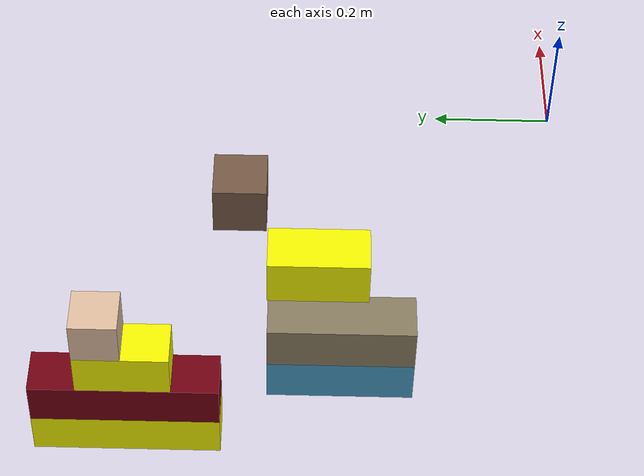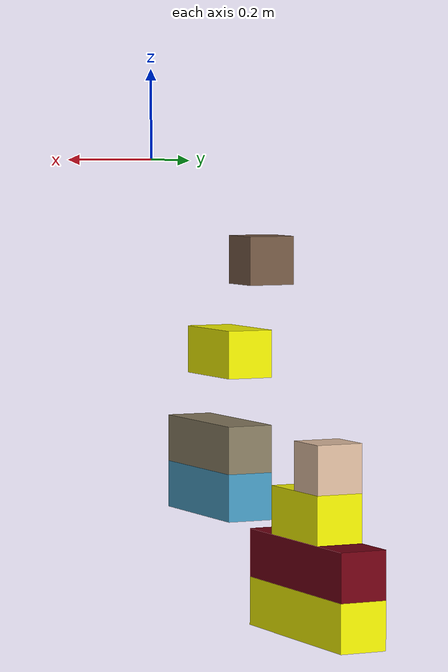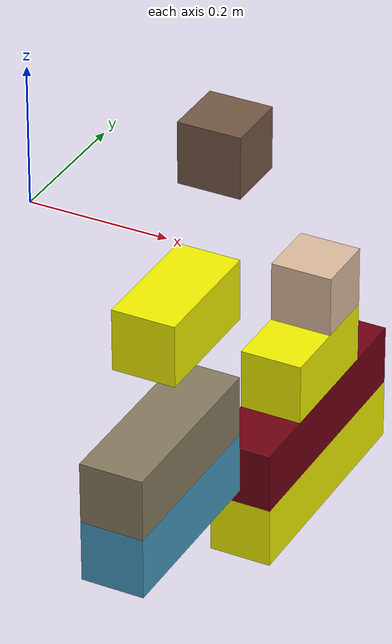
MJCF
<mujoco>
  <worldbody>
    <light pos=' 0 0 1'/>
    <geom type="box" pos="0 0.55 -0.2" size=".05 0.05 .05" rgba="0.4588235294117647 0.34901960784313724 0.27058823529411763 1.0"/>
    <geom type="box" pos="0 0.4 -0.4" size=".05 0.1 .05" rgba="0.9607843137254902 0.9607843137254902 0.0 1.0"/>
    <geom type="box" pos="0 0.35 -0.6" size=".05 0.15 .05" rgba="0.5372549019607843 0.49019607843137253 0.3843137254901961 1.0"/>
    <geom type="box" pos="0 0.85 -0.6" size=".05 0.05 .05" rgba="0.8823529411764706 0.7450980392156863 0.6313725490196078 1.0"/>
    <geom type="box" pos="0 0.35 -0.7" size=".05 0.15 .05" rgba="0.27450980392156865 0.6078431372549019 0.7647058823529411 1.0"/>
    <geom type="box" pos="0 0.8 -0.7" size=".05 0.1 .05" rgba="0.9607843137254902 0.9607843137254902 0.0 1.0"/>
    <geom type="box" pos="0 0.8 -0.8" size=".05 0.2 .05" rgba="0.4470588235294118 0.0 0.07058823529411765 1.0"/>
    <geom type="box" pos="0 0.8 -0.9" size=".05 0.2 .05" rgba="0.9607843137254902 0.9607843137254902 0.0 1.0"/>
  </worldbody>
</mujoco>
